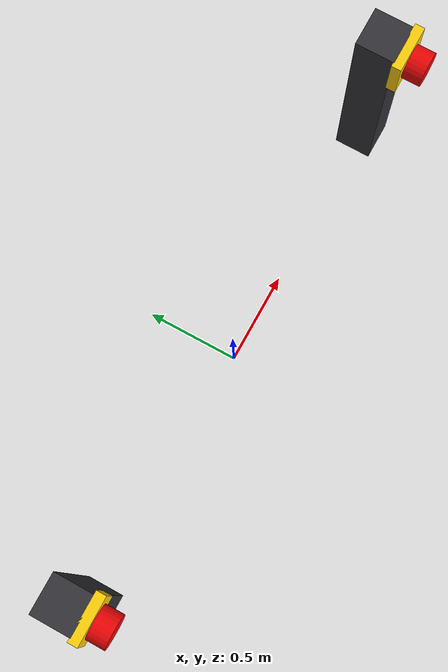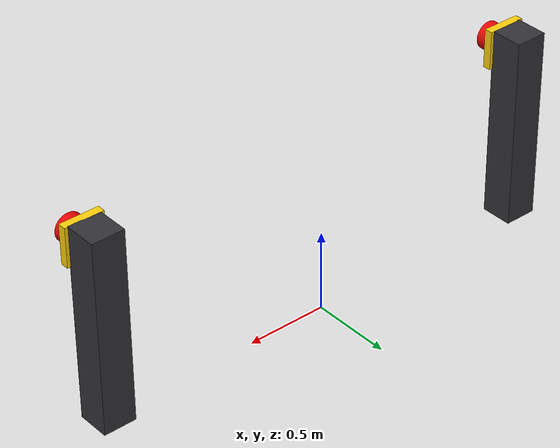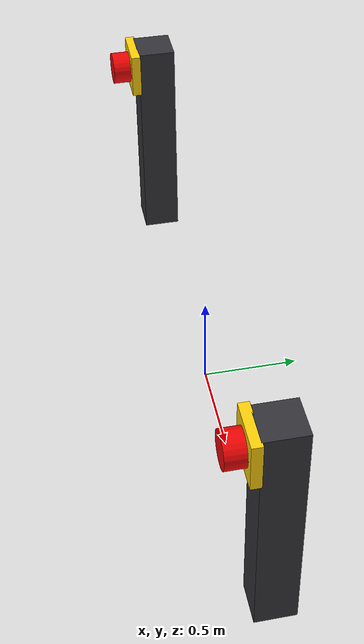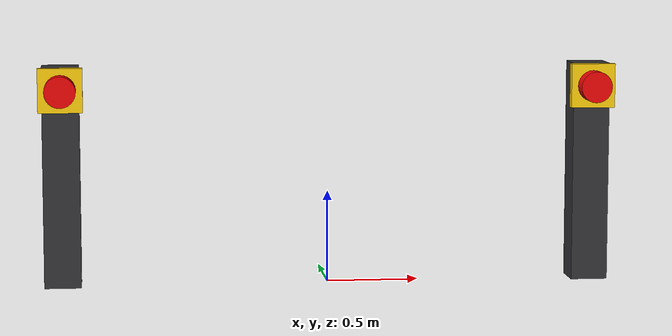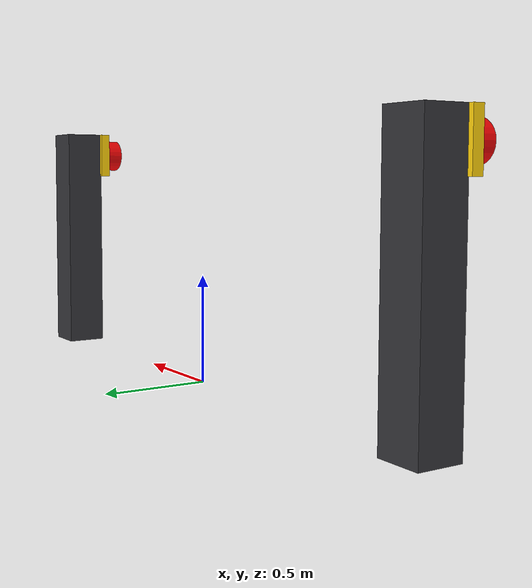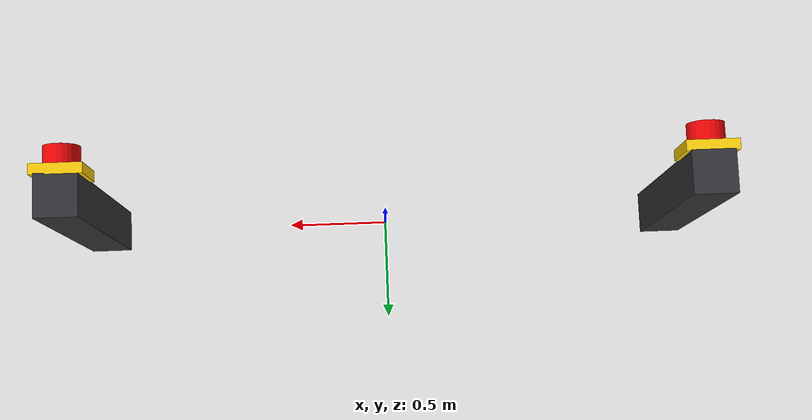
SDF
<?xml version="1.0"?>

<sdf version="1.10">

  <model name="emergency_stop">

    <static>true</static>

    <link name="emergency_stop_link">

      <!-- Left pedestal -->

      <collision name="left_pedestal_collision">
        <pose>-1.45 0 0.60 0 0 0</pose>

        <geometry>
          <box>
            <size>0.20 0.20 1.20</size>
          </box>
        </geometry>
      </collision>

      <visual name="left_pedestal_visual">
        <pose>-1.45 0 0.60 0 0 0</pose>

        <geometry>
          <box>
            <size>0.20 0.20 1.20</size>
          </box>
        </geometry>

        <material>
          <ambient>0.12 0.12 0.14 1</ambient>
          <diffuse>0.20 0.20 0.22 1</diffuse>
        </material>
      </visual>

      <visual name="left_yellow_plate_visual">
        <pose>-1.45 -0.12 1.08 0 0 0</pose>

        <geometry>
          <box>
            <size>0.24 0.05 0.24</size>
          </box>
        </geometry>

        <material>
          <ambient>0.90 0.70 0.02 1</ambient>
          <diffuse>1.00 0.82 0.04 1</diffuse>
        </material>
      </visual>

      <collision name="left_button_collision">
        <pose>-1.45 -0.19 1.08 1.5708 0 0</pose>

        <geometry>
          <cylinder>
            <radius>0.085</radius>
            <length>0.10</length>
          </cylinder>
        </geometry>
      </collision>

      <visual name="left_button_visual">
        <pose>-1.45 -0.19 1.08 1.5708 0 0</pose>

        <geometry>
          <cylinder>
            <radius>0.085</radius>
            <length>0.10</length>
          </cylinder>
        </geometry>

        <material>
          <ambient>0.75 0.01 0.01 1</ambient>
          <diffuse>0.95 0.02 0.02 1</diffuse>
        </material>
      </visual>

      <!-- Right pedestal -->

      <collision name="right_pedestal_collision">
        <pose>1.45 0 0.60 0 0 0</pose>

        <geometry>
          <box>
            <size>0.20 0.20 1.20</size>
          </box>
        </geometry>
      </collision>

      <visual name="right_pedestal_visual">
        <pose>1.45 0 0.60 0 0 0</pose>

        <geometry>
          <box>
            <size>0.20 0.20 1.20</size>
          </box>
        </geometry>

        <material>
          <ambient>0.12 0.12 0.14 1</ambient>
          <diffuse>0.20 0.20 0.22 1</diffuse>
        </material>
      </visual>

      <visual name="right_yellow_plate_visual">
        <pose>1.45 -0.12 1.08 0 0 0</pose>

        <geometry>
          <box>
            <size>0.24 0.05 0.24</size>
          </box>
        </geometry>

        <material>
          <ambient>0.90 0.70 0.02 1</ambient>
          <diffuse>1.00 0.82 0.04 1</diffuse>
        </material>
      </visual>

      <collision name="right_button_collision">
        <pose>1.45 -0.19 1.08 1.5708 0 0</pose>

        <geometry>
          <cylinder>
            <radius>0.085</radius>
            <length>0.10</length>
          </cylinder>
        </geometry>
      </collision>

      <visual name="right_button_visual">
        <pose>1.45 -0.19 1.08 1.5708 0 0</pose>

        <geometry>
          <cylinder>
            <radius>0.085</radius>
            <length>0.10</length>
          </cylinder>
        </geometry>

        <material>
          <ambient>0.75 0.01 0.01 1</ambient>
          <diffuse>0.95 0.02 0.02 1</diffuse>
        </material>
      </visual>

    </link>

  </model>

</sdf>
